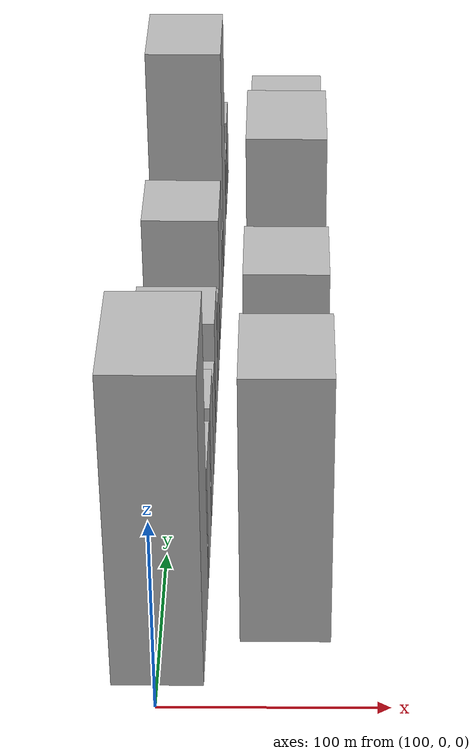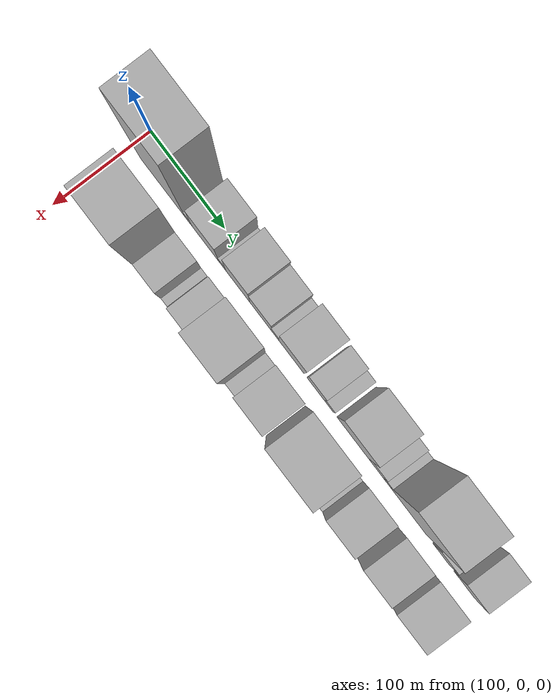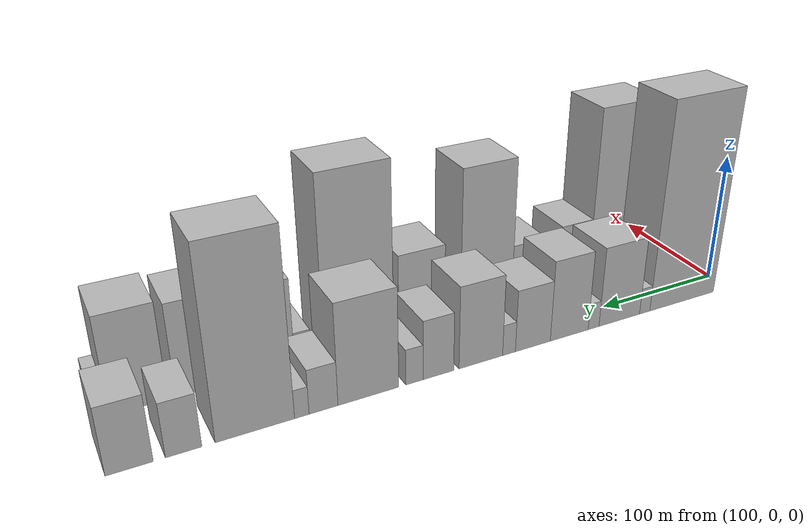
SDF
<sdf version="1.6">
 <world name="default">
  <model name="building_15">
   <static>1</static>
   <pose>100.0000 43.3502 0 0.000000 0.000000 0.000000</pose>
   <link name="link">
    <pose>0 0 81.00 0 0 0</pose>
    <collision name="collision"><geometry><box><size>40.0000 60.4985 162.0000</size></box></geometry></collision>
    <visual name="visual">
     <cast_shadows>0</cast_shadows>
     <geometry><box><size>40.0000 60.4985 162.0000</size></box></geometry>
     <material>
      <script>
       <uri>model://HANNAS_wall/materials/scripts</uri>
       <uri>model://HANNAS_wall/materials/textures</uri>
       <name>vrc/HANNAS_wall</name>
      </script>
     </material>
    </visual>
   </link>
  </model>
  <model name="building_16">
   <static>1</static>
   <pose>100.0000 78.2731 0 0.000000 0.000000 0.000000</pose>
   <link name="link">
    <pose>0 0 10.50 0 0 0</pose>
    <collision name="collision"><geometry><box><size>40.0000 9.3473 21.0000</size></box></geometry></collision>
    <visual name="visual">
     <cast_shadows>0</cast_shadows>
     <geometry><box><size>40.0000 9.3473 21.0000</size></box></geometry>
     <material>
      <script>
       <uri>model://HANNAS_wall/materials/scripts</uri>
       <uri>model://HANNAS_wall/materials/textures</uri>
       <name>vrc/HANNAS_wall</name>
      </script>
     </material>
    </visual>
   </link>
  </model>
  <model name="building_17">
   <static>1</static>
   <pose>100.0000 100.9975 0 0.000000 0.000000 0.000000</pose>
   <link name="link">
    <pose>0 0 31.50 0 0 0</pose>
    <collision name="collision"><geometry><box><size>40.0000 36.1016 63.0000</size></box></geometry></collision>
    <visual name="visual">
     <cast_shadows>0</cast_shadows>
     <geometry><box><size>40.0000 36.1016 63.0000</size></box></geometry>
     <material>
      <script>
       <uri>model://HANNAS_wall/materials/scripts</uri>
       <uri>model://HANNAS_wall/materials/textures</uri>
       <name>vrc/HANNAS_wall</name>
      </script>
     </material>
    </visual>
   </link>
  </model>
  <model name="building_18">
   <static>1</static>
   <pose>100.0000 123.7609 0 0.000000 0.000000 0.000000</pose>
   <link name="link">
    <pose>0 0 10.50 0 0 0</pose>
    <collision name="collision"><geometry><box><size>40.0000 9.4252 21.0000</size></box></geometry></collision>
    <visual name="visual">
     <cast_shadows>0</cast_shadows>
     <geometry><box><size>40.0000 9.4252 21.0000</size></box></geometry>
     <material>
      <script>
       <uri>model://HANNAS_wall/materials/scripts</uri>
       <uri>model://HANNAS_wall/materials/textures</uri>
       <name>vrc/HANNAS_wall</name>
      </script>
     </material>
    </visual>
   </link>
  </model>
  <model name="building_19">
   <static>1</static>
   <pose>100.0000 144.4785 0 0.000000 0.000000 0.000000</pose>
   <link name="link">
    <pose>0 0 31.50 0 0 0</pose>
    <collision name="collision"><geometry><box><size>40.0000 32.0101 63.0000</size></box></geometry></collision>
    <visual name="visual">
     <cast_shadows>0</cast_shadows>
     <geometry><box><size>40.0000 32.0101 63.0000</size></box></geometry>
     <material>
      <script>
       <uri>model://HANNAS_wall/materials/scripts</uri>
       <uri>model://HANNAS_wall/materials/textures</uri>
       <name>vrc/HANNAS_wall</name>
      </script>
     </material>
    </visual>
   </link>
  </model>
  <model name="building_20">
   <static>1</static>
   <pose>100.0000 174.7218 0 0.000000 0.000000 0.000000</pose>
   <link name="link">
    <pose>0 0 24.00 0 0 0</pose>
    <collision name="collision"><geometry><box><size>40.0000 28.4764 48.0000</size></box></geometry></collision>
    <visual name="visual">
     <cast_shadows>0</cast_shadows>
     <geometry><box><size>40.0000 28.4764 48.0000</size></box></geometry>
     <material>
      <script>
       <uri>model://HANNAS_wall/materials/scripts</uri>
       <uri>model://HANNAS_wall/materials/textures</uri>
       <name>vrc/HANNAS_wall</name>
      </script>
     </material>
    </visual>
   </link>
  </model>
  <model name="building_21">
   <static>1</static>
   <pose>100.0000 194.0544 0 0.000000 0.000000 0.000000</pose>
   <link name="link">
    <pose>0 0 12.00 0 0 0</pose>
    <collision name="collision"><geometry><box><size>40.0000 10.1888 24.0000</size></box></geometry></collision>
    <visual name="visual">
     <cast_shadows>0</cast_shadows>
     <geometry><box><size>40.0000 10.1888 24.0000</size></box></geometry>
     <material>
      <script>
       <uri>model://HANNAS_wall/materials/scripts</uri>
       <uri>model://HANNAS_wall/materials/textures</uri>
       <name>vrc/HANNAS_wall</name>
      </script>
     </material>
    </visual>
   </link>
  </model>
  <model name="building_22">
   <static>1</static>
   <pose>100.0000 216.0240 0 0.000000 0.000000 0.000000</pose>
   <link name="link">
    <pose>0 0 31.50 0 0 0</pose>
    <collision name="collision"><geometry><box><size>40.0000 33.7504 63.0000</size></box></geometry></collision>
    <visual name="visual">
     <cast_shadows>0</cast_shadows>
     <geometry><box><size>40.0000 33.7504 63.0000</size></box></geometry>
     <material>
      <script>
       <uri>model://HANNAS_wall/materials/scripts</uri>
       <uri>model://HANNAS_wall/materials/textures</uri>
       <name>vrc/HANNAS_wall</name>
      </script>
     </material>
    </visual>
   </link>
  </model>
  <model name="building_23">
   <static>1</static>
   <pose>100.0000 248.3061 0 0.000000 0.000000 0.000000</pose>
   <link name="link">
    <pose>0 0 22.50 0 0 0</pose>
    <collision name="collision"><geometry><box><size>40.0000 22.8138 45.0000</size></box></geometry></collision>
    <visual name="visual">
     <cast_shadows>0</cast_shadows>
     <geometry><box><size>40.0000 22.8138 45.0000</size></box></geometry>
     <material>
      <script>
       <uri>model://HANNAS_wall/materials/scripts</uri>
       <uri>model://HANNAS_wall/materials/textures</uri>
       <name>vrc/HANNAS_wall</name>
      </script>
     </material>
    </visual>
   </link>
  </model>
  <model name="building_24">
   <static>1</static>
   <pose>100.0000 265.9778 0 0.000000 0.000000 0.000000</pose>
   <link name="link">
    <pose>0 0 13.50 0 0 0</pose>
    <collision name="collision"><geometry><box><size>40.0000 12.5296 27.0000</size></box></geometry></collision>
    <visual name="visual">
     <cast_shadows>0</cast_shadows>
     <geometry><box><size>40.0000 12.5296 27.0000</size></box></geometry>
     <material>
      <script>
       <uri>model://HANNAS_wall/materials/scripts</uri>
       <uri>model://HANNAS_wall/materials/textures</uri>
       <name>vrc/HANNAS_wall</name>
      </script>
     </material>
    </visual>
   </link>
  </model>
  <model name="building_25">
   <static>1</static>
   <pose>100.0000 298.4218 0 0.000000 0.000000 0.000000</pose>
   <link name="link">
    <pose>0 0 37.50 0 0 0</pose>
    <collision name="collision"><geometry><box><size>40.0000 42.3584 75.0000</size></box></geometry></collision>
    <visual name="visual">
     <cast_shadows>0</cast_shadows>
     <geometry><box><size>40.0000 42.3584 75.0000</size></box></geometry>
     <material>
      <script>
       <uri>model://HANNAS_wall/materials/scripts</uri>
       <uri>model://HANNAS_wall/materials/textures</uri>
       <name>vrc/HANNAS_wall</name>
      </script>
     </material>
    </visual>
   </link>
  </model>
  <model name="building_26">
   <static>1</static>
   <pose>100.0000 329.2476 0 0.000000 0.000000 0.000000</pose>
   <link name="link">
    <pose>0 0 16.50 0 0 0</pose>
    <collision name="collision"><geometry><box><size>40.0000 19.2931 33.0000</size></box></geometry></collision>
    <visual name="visual">
     <cast_shadows>0</cast_shadows>
     <geometry><box><size>40.0000 19.2931 33.0000</size></box></geometry>
     <material>
      <script>
       <uri>model://HANNAS_wall/materials/scripts</uri>
       <uri>model://HANNAS_wall/materials/textures</uri>
       <name>vrc/HANNAS_wall</name>
      </script>
     </material>
    </visual>
   </link>
  </model>
  <model name="building_27">
   <static>1</static>
   <pose>100.0000 343.6469 0 0.000000 0.000000 0.000000</pose>
   <link name="link">
    <pose>0 0 10.50 0 0 0</pose>
    <collision name="collision"><geometry><box><size>40.0000 9.5056 21.0000</size></box></geometry></collision>
    <visual name="visual">
     <cast_shadows>0</cast_shadows>
     <geometry><box><size>40.0000 9.5056 21.0000</size></box></geometry>
     <material>
      <script>
       <uri>model://HANNAS_wall/materials/scripts</uri>
       <uri>model://HANNAS_wall/materials/textures</uri>
       <name>vrc/HANNAS_wall</name>
      </script>
     </material>
    </visual>
   </link>
  </model>
  <model name="building_28">
   <static>1</static>
   <pose>100.0000 373.3791 0 0.000000 0.000000 0.000000</pose>
   <link name="link">
    <pose>0 0 67.50 0 0 0</pose>
    <collision name="collision"><geometry><box><size>40.0000 49.9587 135.0000</size></box></geometry></collision>
    <visual name="visual">
     <cast_shadows>0</cast_shadows>
     <geometry><box><size>40.0000 49.9587 135.0000</size></box></geometry>
     <material>
      <script>
       <uri>model://HANNAS_wall/materials/scripts</uri>
       <uri>model://HANNAS_wall/materials/textures</uri>
       <name>vrc/HANNAS_wall</name>
      </script>
     </material>
    </visual>
   </link>
  </model>
  <model name="building_29">
   <static>1</static>
   <pose>100.0000 417.1376 0 0.000000 0.000000 0.000000</pose>
   <link name="link">
    <pose>0 0 19.50 0 0 0</pose>
    <collision name="collision"><geometry><box><size>40.0000 21.5583 39.0000</size></box></geometry></collision>
    <visual name="visual">
     <cast_shadows>0</cast_shadows>
     <geometry><box><size>40.0000 21.5583 39.0000</size></box></geometry>
     <material>
      <script>
       <uri>model://HANNAS_wall/materials/scripts</uri>
       <uri>model://HANNAS_wall/materials/textures</uri>
       <name>vrc/HANNAS_wall</name>
      </script>
     </material>
    </visual>
   </link>
  </model>
  <model name="building_30">
   <static>1</static>
   <pose>100.0000 448.5752 0 0.000000 0.000000 0.000000</pose>
   <link name="link">
    <pose>0 0 24.00 0 0 0</pose>
    <collision name="collision"><geometry><box><size>40.0000 27.3170 48.0000</size></box></geometry></collision>
    <visual name="visual">
     <cast_shadows>0</cast_shadows>
     <geometry><box><size>40.0000 27.3170 48.0000</size></box></geometry>
     <material>
      <script>
       <uri>model://HANNAS_wall/materials/scripts</uri>
       <uri>model://HANNAS_wall/materials/textures</uri>
       <name>vrc/HANNAS_wall</name>
      </script>
     </material>
    </visual>
   </link>
  </model>
  <model name="building_45">
   <static>1</static>
   <pose>155.0000 65.0980 0 0.000000 0.000000 0.000000</pose>
   <link name="link">
    <pose>0 0 70.50 0 0 0</pose>
    <collision name="collision"><geometry><box><size>40.0000 48.3301 141.0000</size></box></geometry></collision>
    <visual name="visual">
     <cast_shadows>0</cast_shadows>
     <geometry><box><size>40.0000 48.3301 141.0000</size></box></geometry>
     <material>
      <script>
       <uri>model://HANNAS_wall/materials/scripts</uri>
       <uri>model://HANNAS_wall/materials/textures</uri>
       <name>vrc/HANNAS_wall</name>
      </script>
     </material>
    </visual>
   </link>
  </model>
  <model name="building_46">
   <static>1</static>
   <pose>155.0000 102.9745 0 0.000000 0.000000 0.000000</pose>
   <link name="link">
    <pose>0 0 27.00 0 0 0</pose>
    <collision name="collision"><geometry><box><size>40.0000 27.4228 54.0000</size></box></geometry></collision>
    <visual name="visual">
     <cast_shadows>0</cast_shadows>
     <geometry><box><size>40.0000 27.4228 54.0000</size></box></geometry>
     <material>
      <script>
       <uri>model://HANNAS_wall/materials/scripts</uri>
       <uri>model://HANNAS_wall/materials/textures</uri>
       <name>vrc/HANNAS_wall</name>
      </script>
     </material>
    </visual>
   </link>
  </model>
  <model name="building_47">
   <static>1</static>
   <pose>155.0000 120.8293 0 0.000000 0.000000 0.000000</pose>
   <link name="link">
    <pose>0 0 9.00 0 0 0</pose>
    <collision name="collision"><geometry><box><size>40.0000 8.2870 18.0000</size></box></geometry></collision>
    <visual name="visual">
     <cast_shadows>0</cast_shadows>
     <geometry><box><size>40.0000 8.2870 18.0000</size></box></geometry>
     <material>
      <script>
       <uri>model://HANNAS_wall/materials/scripts</uri>
       <uri>model://HANNAS_wall/materials/textures</uri>
       <name>vrc/HANNAS_wall</name>
      </script>
     </material>
    </visual>
   </link>
  </model>
  <model name="building_48">
   <static>1</static>
   <pose>155.0000 144.1279 0 0.000000 0.000000 0.000000</pose>
   <link name="link">
    <pose>0 0 24.00 0 0 0</pose>
    <collision name="collision"><geometry><box><size>40.0000 28.3102 48.0000</size></box></geometry></collision>
    <visual name="visual">
     <cast_shadows>0</cast_shadows>
     <geometry><box><size>40.0000 28.3102 48.0000</size></box></geometry>
     <material>
      <script>
       <uri>model://HANNAS_wall/materials/scripts</uri>
       <uri>model://HANNAS_wall/materials/textures</uri>
       <name>vrc/HANNAS_wall</name>
      </script>
     </material>
    </visual>
   </link>
  </model>
  <model name="building_49">
   <static>1</static>
   <pose>155.0000 179.8417 0 0.000000 0.000000 0.000000</pose>
   <link name="link">
    <pose>0 0 58.50 0 0 0</pose>
    <collision name="collision"><geometry><box><size>40.0000 43.1173 117.0000</size></box></geometry></collision>
    <visual name="visual">
     <cast_shadows>0</cast_shadows>
     <geometry><box><size>40.0000 43.1173 117.0000</size></box></geometry>
     <material>
      <script>
       <uri>model://HANNAS_wall/materials/scripts</uri>
       <uri>model://HANNAS_wall/materials/textures</uri>
       <name>vrc/HANNAS_wall</name>
      </script>
     </material>
    </visual>
   </link>
  </model>
  <model name="building_50">
   <static>1</static>
   <pose>155.0000 207.8905 0 0.000000 0.000000 0.000000</pose>
   <link name="link">
    <pose>0 0 13.50 0 0 0</pose>
    <collision name="collision"><geometry><box><size>40.0000 12.9804 27.0000</size></box></geometry></collision>
    <visual name="visual">
     <cast_shadows>0</cast_shadows>
     <geometry><box><size>40.0000 12.9804 27.0000</size></box></geometry>
     <material>
      <script>
       <uri>model://HANNAS_wall/materials/scripts</uri>
       <uri>model://HANNAS_wall/materials/textures</uri>
       <name>vrc/HANNAS_wall</name>
      </script>
     </material>
    </visual>
   </link>
  </model>
  <model name="building_51">
   <static>1</static>
   <pose>155.0000 232.5144 0 0.000000 0.000000 0.000000</pose>
   <link name="link">
    <pose>0 0 31.50 0 0 0</pose>
    <collision name="collision"><geometry><box><size>40.0000 36.2673 63.0000</size></box></geometry></collision>
    <visual name="visual">
     <cast_shadows>0</cast_shadows>
     <geometry><box><size>40.0000 36.2673 63.0000</size></box></geometry>
     <material>
      <script>
       <uri>model://HANNAS_wall/materials/scripts</uri>
       <uri>model://HANNAS_wall/materials/textures</uri>
       <name>vrc/HANNAS_wall</name>
      </script>
     </material>
    </visual>
   </link>
  </model>
  <model name="building_52">
   <static>1</static>
   <pose>155.0000 280.8864 0 0.000000 0.000000 0.000000</pose>
   <link name="link">
    <pose>0 0 67.50 0 0 0</pose>
    <collision name="collision"><geometry><box><size>40.0000 52.4767 135.0000</size></box></geometry></collision>
    <visual name="visual">
     <cast_shadows>0</cast_shadows>
     <geometry><box><size>40.0000 52.4767 135.0000</size></box></geometry>
     <material>
      <script>
       <uri>model://HANNAS_wall/materials/scripts</uri>
       <uri>model://HANNAS_wall/materials/textures</uri>
       <name>vrc/HANNAS_wall</name>
      </script>
     </material>
    </visual>
   </link>
  </model>
  <model name="building_53">
   <static>1</static>
   <pose>155.0000 322.1110 0 0.000000 0.000000 0.000000</pose>
   <link name="link">
    <pose>0 0 12.00 0 0 0</pose>
    <collision name="collision"><geometry><box><size>40.0000 11.9725 24.0000</size></box></geometry></collision>
    <visual name="visual">
     <cast_shadows>0</cast_shadows>
     <geometry><box><size>40.0000 11.9725 24.0000</size></box></geometry>
     <material>
      <script>
       <uri>model://HANNAS_wall/materials/scripts</uri>
       <uri>model://HANNAS_wall/materials/textures</uri>
       <name>vrc/HANNAS_wall</name>
      </script>
     </material>
    </visual>
   </link>
  </model>
  <model name="building_54">
   <static>1</static>
   <pose>155.0000 345.9662 0 0.000000 0.000000 0.000000</pose>
   <link name="link">
    <pose>0 0 33.00 0 0 0</pose>
    <collision name="collision"><geometry><box><size>40.0000 35.7379 66.0000</size></box></geometry></collision>
    <visual name="visual">
     <cast_shadows>0</cast_shadows>
     <geometry><box><size>40.0000 35.7379 66.0000</size></box></geometry>
     <material>
      <script>
       <uri>model://HANNAS_wall/materials/scripts</uri>
       <uri>model://HANNAS_wall/materials/textures</uri>
       <name>vrc/HANNAS_wall</name>
      </script>
     </material>
    </visual>
   </link>
  </model>
  <model name="building_55">
   <static>1</static>
   <pose>155.0000 368.5416 0 0.000000 0.000000 0.000000</pose>
   <link name="link">
    <pose>0 0 10.50 0 0 0</pose>
    <collision name="collision"><geometry><box><size>40.0000 9.4130 21.0000</size></box></geometry></collision>
    <visual name="visual">
     <cast_shadows>0</cast_shadows>
     <geometry><box><size>40.0000 9.4130 21.0000</size></box></geometry>
     <material>
      <script>
       <uri>model://HANNAS_wall/materials/scripts</uri>
       <uri>model://HANNAS_wall/materials/textures</uri>
       <name>vrc/HANNAS_wall</name>
      </script>
     </material>
    </visual>
   </link>
  </model>
  <model name="building_56">
   <static>1</static>
   <pose>155.0000 390.6018 0 0.000000 0.000000 0.000000</pose>
   <link name="link">
    <pose>0 0 34.50 0 0 0</pose>
    <collision name="collision"><geometry><box><size>40.0000 34.7075 69.0000</size></box></geometry></collision>
    <visual name="visual">
     <cast_shadows>0</cast_shadows>
     <geometry><box><size>40.0000 34.7075 69.0000</size></box></geometry>
     <material>
      <script>
       <uri>model://HANNAS_wall/materials/scripts</uri>
       <uri>model://HANNAS_wall/materials/textures</uri>
       <name>vrc/HANNAS_wall</name>
      </script>
     </material>
    </visual>
   </link>
  </model>
  <model name="building_57">
   <static>1</static>
   <pose>155.0000 431.3261 0 0.000000 0.000000 0.000000</pose>
   <link name="link">
    <pose>0 0 36.00 0 0 0</pose>
    <collision name="collision"><geometry><box><size>40.0000 36.7412 72.0000</size></box></geometry></collision>
    <visual name="visual">
     <cast_shadows>0</cast_shadows>
     <geometry><box><size>40.0000 36.7412 72.0000</size></box></geometry>
     <material>
      <script>
       <uri>model://HANNAS_wall/materials/scripts</uri>
       <uri>model://HANNAS_wall/materials/textures</uri>
       <name>vrc/HANNAS_wall</name>
      </script>
     </material>
    </visual>
   </link>
  </model>
  <model name="building_58">
   <static>1</static>
   <pose>155.0000 453.9886 0 0.000000 0.000000 0.000000</pose>
   <link name="link">
    <pose>0 0 10.50 0 0 0</pose>
    <collision name="collision"><geometry><box><size>40.0000 8.5838 21.0000</size></box></geometry></collision>
    <visual name="visual">
     <cast_shadows>0</cast_shadows>
     <geometry><box><size>40.0000 8.5838 21.0000</size></box></geometry>
     <material>
      <script>
       <uri>model://HANNAS_wall/materials/scripts</uri>
       <uri>model://HANNAS_wall/materials/textures</uri>
       <name>vrc/HANNAS_wall</name>
      </script>
     </material>
    </visual>
   </link>
  </model>
 </world>
</sdf>
